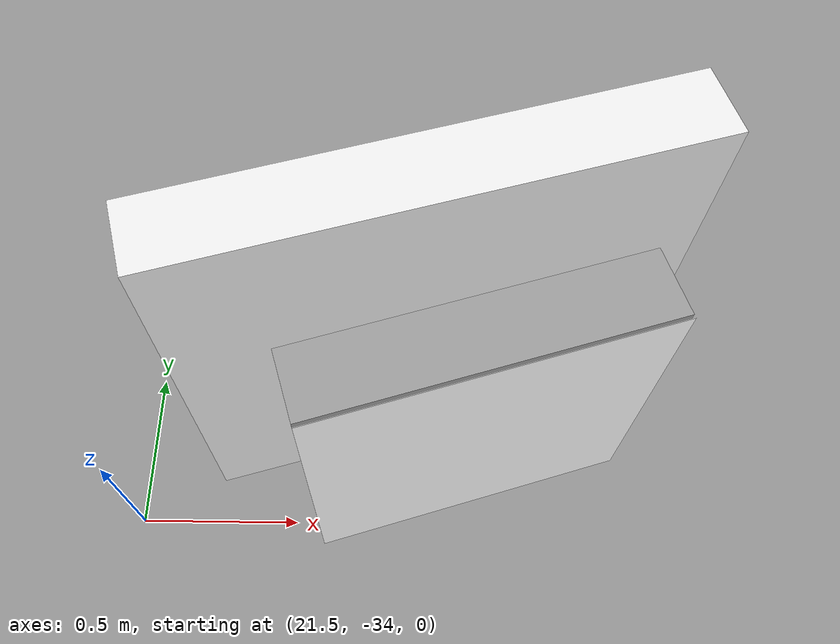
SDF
<sdf version="1.6">
 <world name="default">
  <model name="marker23_box">
   <link name="marker">
    <inertial>
     <mass>0.1</mass>
     <inertia><ixx>0</ixx><ixy>0</ixy><ixz>0</ixz><iyy>0</iyy><iyz>0</iyz><izz>0</izz></inertia>
    </inertial>
    <self_collide>1</self_collide>
    <pose>0 0 0.25 0 -0 0</pose>
    <visual name="visual">
     <geometry><box><size>1 0.001 1</size></box></geometry>
     <material>
      <script>
       <uri>/root/model_editor_models/marker23/material/scripts</uri>
       <uri>/root/model_editor_models/marker23/material/textures</uri>
       <name>Aruco/marker23</name>
      </script>
      <shader type="pixel"><normal_map>__default__</normal_map></shader>
      <emissive>0 0 0 1</emissive>
      <ambient>1 1 1 1</ambient>
      <diffuse>1 1 1 1</diffuse>
      <specular>0 0 0 1</specular>
     </material>
    </visual>
    <collision name="collision">
     <geometry><box><size>1 0.001 1</size></box></geometry>
     <surface>
      <friction>
       <ode><mu>1</mu><mu2>1</mu2><fdir1>0 0 0</fdir1><slip1>0</slip1><slip2>0</slip2></ode>
       <torsional>
        <coefficient>1</coefficient>
        <patch_radius>0</patch_radius>
        <surface_radius>0</surface_radius>
        <use_patch_radius>1</use_patch_radius>
        <ode><slip>0</slip></ode>
       </torsional>
      </friction>
      <bounce><restitution_coefficient>0</restitution_coefficient><threshold>1e+06</threshold></bounce>
      <contact>
       <collide_without_contact>0</collide_without_contact>
       <collide_without_contact_bitmask>1</collide_without_contact_bitmask>
       <collide_bitmask>1</collide_bitmask>
       <ode>
        <soft_cfm>0</soft_cfm>
        <soft_erp>0.2</soft_erp>
        <kp>1e+13</kp>
        <kd>1</kd>
        <max_vel>0.01</max_vel>
        <min_depth>0</min_depth>
       </ode>
       <bullet>
        <split_impulse>1</split_impulse>
        <split_impulse_penetration_threshold>-0.01</split_impulse_penetration_threshold>
        <soft_cfm>0</soft_cfm>
        <soft_erp>0.2</soft_erp>
        <kp>1e+13</kp>
        <kd>1</kd>
       </bullet>
      </contact>
     </surface>
    </collision>
   </link>
   <link name="link_1">
    <inertial>
     <mass>1</mass>
     <inertia>
      <ixx>0.166667</ixx>
      <ixy>0</ixy>
      <ixz>0</ixz>
      <iyy>0.166667</iyy>
      <iyz>0</iyz>
      <izz>0.166667</izz>
     </inertia>
    </inertial>
    <pose>0 0.11 0.25 0 -0 0</pose>
    <visual name="visual">
     <geometry><box><size>1 0.2 1</size></box></geometry>
     <material>
      <lighting>1</lighting>
      <script><uri>file://media/materials/scripts/gazebo.material</uri><name>Gazebo/Grey</name></script>
      <shader type="pixel"><normal_map>__default__</normal_map></shader>
      <emissive>0 0 0 1</emissive>
      <ambient>0.3 0.3 0.3 1</ambient>
      <diffuse>0.7 0.7 0.7 1</diffuse>
      <specular>0.01 0.01 0.01 1</specular>
     </material>
    </visual>
    <collision name="collision">
     <geometry><box><size>1 0.2 1</size></box></geometry>
     <surface>
      <friction>
       <ode><mu>1</mu><mu2>1</mu2><fdir1>0 0 0</fdir1><slip1>0</slip1><slip2>0</slip2></ode>
       <torsional>
        <coefficient>1</coefficient>
        <patch_radius>0</patch_radius>
        <surface_radius>0</surface_radius>
        <use_patch_radius>1</use_patch_radius>
        <ode><slip>0</slip></ode>
       </torsional>
      </friction>
      <bounce><restitution_coefficient>0</restitution_coefficient><threshold>1e+06</threshold></bounce>
      <contact>
       <collide_without_contact>0</collide_without_contact>
       <collide_without_contact_bitmask>1</collide_without_contact_bitmask>
       <collide_bitmask>1</collide_bitmask>
       <ode>
        <soft_cfm>0</soft_cfm>
        <soft_erp>0.2</soft_erp>
        <kp>1e+13</kp>
        <kd>1</kd>
        <max_vel>0.01</max_vel>
        <min_depth>0</min_depth>
       </ode>
       <bullet>
        <split_impulse>1</split_impulse>
        <split_impulse_penetration_threshold>-0.01</split_impulse_penetration_threshold>
        <soft_cfm>0</soft_cfm>
        <soft_erp>0.2</soft_erp>
        <kp>1e+13</kp>
        <kd>1</kd>
       </bullet>
      </contact>
     </surface>
    </collision>
   </link>
   <joint name="link_1_JOINT_3" type="fixed">
    <parent>link_1</parent>
    <child>marker</child>
    <physics>
     <ode><limit><cfm>0</cfm><erp>0.2</erp></limit><suspension><cfm>0</cfm><erp>0.2</erp></suspension></ode>
    </physics>
   </joint>
   <static>0</static>
   <pose>22.5694 -33.9177 0.249993 1e-06 -1e-06 0.302575</pose>
  </model>
  <model name="unit_box_0">
   <link name="link">
    <inertial>
     <mass>1</mass>
     <inertia>
      <ixx>0.166667</ixx>
      <ixy>0</ixy>
      <ixz>0</ixz>
      <iyy>0.166667</iyy>
      <iyz>0</iyz>
      <izz>0.166667</izz>
     </inertia>
    </inertial>
    <visual name="visual">
     <geometry><box><size>1.50119 0.213615 1.37005</size></box></geometry>
     <material>
      <script><name>Gazebo/White</name><uri>file://media/materials/scripts/gazebo.material</uri></script>
      <shader type="vertex"><normal_map>__default__</normal_map></shader>
      <ambient>1 1 1 1</ambient>
      <diffuse>1 1 1 1</diffuse>
      <specular>0 0 0 1</specular>
      <emissive>0 0 0 1</emissive>
     </material>
    </visual>
    <collision name="collision">
     <geometry><box><size>1.50119 0.213615 1.37005</size></box></geometry>
     <surface>
      <friction>
       <ode><mu>1</mu><mu2>1</mu2><fdir1>0 0 0</fdir1><slip1>0</slip1><slip2>0</slip2></ode>
       <torsional>
        <coefficient>1</coefficient>
        <patch_radius>0</patch_radius>
        <surface_radius>0</surface_radius>
        <use_patch_radius>1</use_patch_radius>
        <ode><slip>0</slip></ode>
       </torsional>
      </friction>
      <bounce><restitution_coefficient>0</restitution_coefficient><threshold>1e+06</threshold></bounce>
      <contact>
       <collide_without_contact>0</collide_without_contact>
       <collide_without_contact_bitmask>1</collide_without_contact_bitmask>
       <collide_bitmask>1</collide_bitmask>
       <ode>
        <soft_cfm>0</soft_cfm>
        <soft_erp>0.2</soft_erp>
        <kp>1e+13</kp>
        <kd>1</kd>
        <max_vel>0.01</max_vel>
        <min_depth>0</min_depth>
       </ode>
       <bullet>
        <split_impulse>1</split_impulse>
        <split_impulse_penetration_threshold>-0.01</split_impulse_penetration_threshold>
        <soft_cfm>0</soft_cfm>
        <soft_erp>0.2</soft_erp>
        <kp>1e+13</kp>
        <kd>1</kd>
       </bullet>
      </contact>
     </surface>
    </collision>
   </link>
   <static>1</static>
   <pose>22.4098 -33.4947 0.538938 0 -0 0.288041</pose>
  </model>
 </world>
</sdf>
